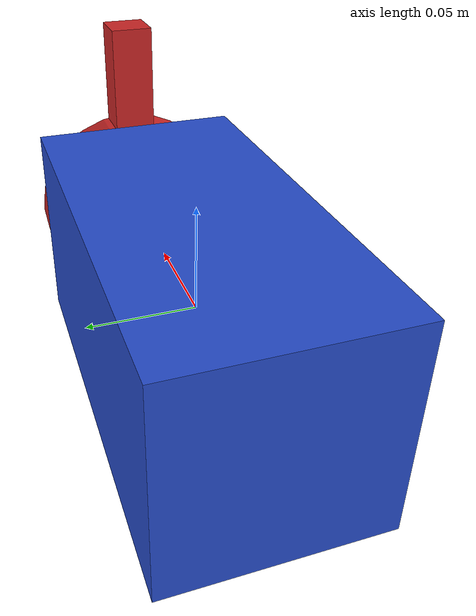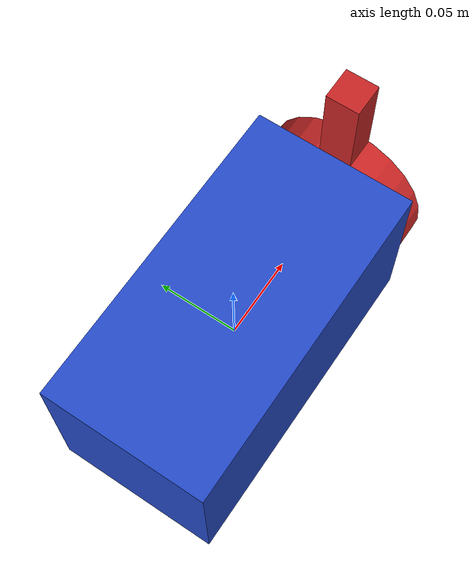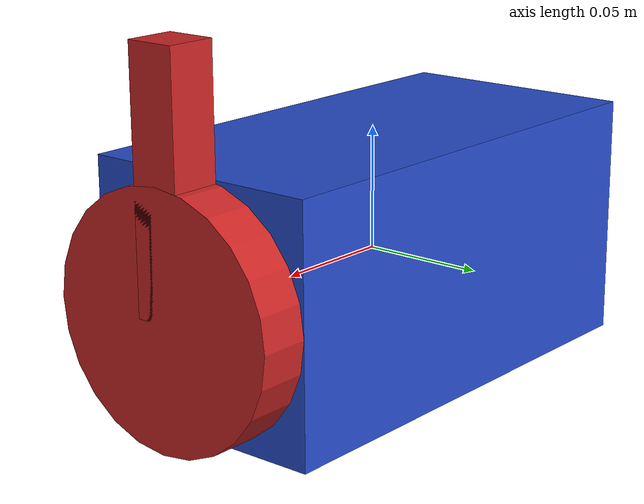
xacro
<?xml version="1.0"?>
<robot>

    <!-- TODO: more reasonable inertial params, add collision, etc -->

    <link name="body">
        <inertial>
            <mass value="100" />
            <inertia ixx="100" ixy="0" ixz="0" iyy="100" iyz="0" izz="100" />
        </inertial>
        <visual>
            <geometry>
                <box size="0.20 0.10 0.10" />
            </geometry>
            <material name="blue" />
        </visual>
    </link>

    <joint name="axis" type="continuous">
        <origin xyz="0.10 0 0" />
        <parent link="body" />
        <child link="wheel" />
        <axis xyz="1 0 0" />
    </joint>

    <link name="wheel">
        <inertial>
            <mass value="1" />
            <inertia ixx="1" ixy="0" ixz="0" iyy="1" iyz="0" izz="1" />
        </inertial>
        <visual>
            <origin xyz="0.01 0 0" rpy="0 ${pi/2} 0" />
            <geometry>
                <cylinder radius="0.05" length="0.02" />
            </geometry>
            <material name="red" />
        </visual>
        <visual>
            <origin xyz="0.01 0 0.05" rpy="0 0 0" />
            <geometry>
                <box size="0.02 0.02 0.1" />
            </geometry>
            <material name="red" />
        </visual>
    </link>

</robot>
